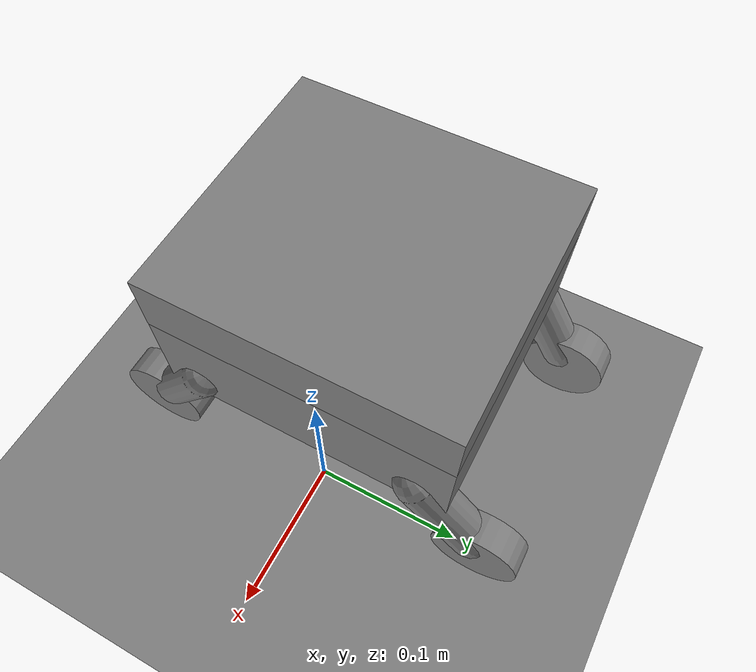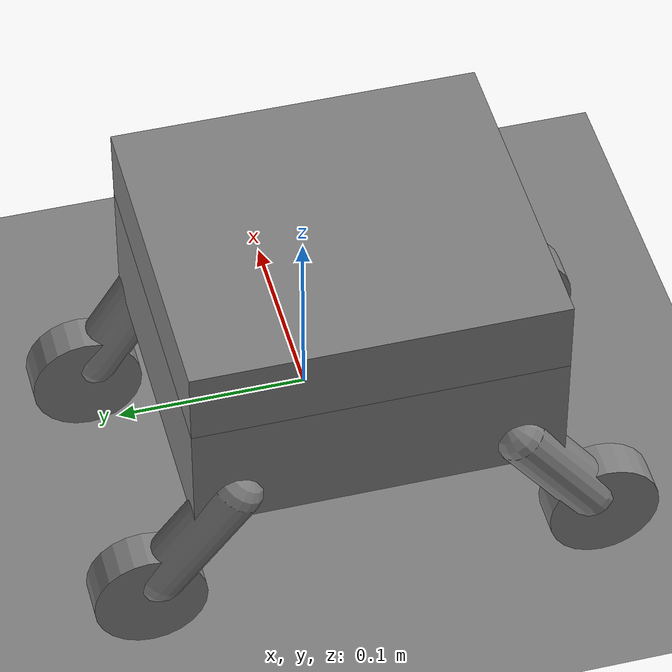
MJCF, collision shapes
<mujoco model="General Robotics Robot">

    <!-- COMPILER / SIMULATION                                  -->

    <compiler angle="degree"
              meshdir="Assets"
              inertiafromgeom="false"/>

    <option timestep="0.001"
            gravity="0 0 -9.81"
            integrator="implicitfast"
            iterations="50"/>

    <!-- VISUAL ASSETS                                          -->

    <asset>

        <mesh name="base_mesh" file="base_link.stl"/>

        <mesh name="leg_fl_mesh" file="Leg_FL.stl"/>
        <mesh name="leg_fr_mesh" file="Leg_FR.stl"/>
        <mesh name="leg_bl_mesh" file="Leg_BL.stl"/>
        <mesh name="leg_br_mesh" file="Leg_BR.stl"/>

        <mesh name="wheel_fl_mesh" file="Wheel_FL.stl"/>
        <mesh name="wheel_fr_mesh" file="Wheel_FR.stl"/>
        <mesh name="wheel_bl_mesh" file="Wheel_BL.stl"/>
        <mesh name="wheel_br_mesh" file="Wheel_BR.stl"/>

    </asset>

    <!-- WORLD                                                  -->

    <worldbody>

        <!-- FLOOR                                              -->

        <geom name="floor"
              type="plane"
              pos="0 0 0"
              size="2 2 0.1"
              friction="1 0.05 0.01"
              contype="1"
              conaffinity="1"
              group="0"/>

        <!-- ROBOT                                              -->

        <body name="base_link"
              pos="0 0 0.08373">

            <freejoint name="root_freejoint"/>

            <!-- BASE VISUAL                                        -->

            <geom name="base_visual"
                  type="mesh"
                  mesh="base_mesh"
                  contype="0"
                  conaffinity="0"
                  group="2"/>

            <!-- BASE INERTIA                                       -->

            <inertial
                pos="-0.070214 -0.000712 0.050450"
                mass="2.188379"
                fullinertia="
                    0.076070
                    0.085530
                    0.122000
                    0.000022967131
                    -0.000009709464
                    -0.000011921456"/>

            <!-- BASE COLLISION                                     -->
            <!-- group 3 = collision/debug geometry                 -->

            <geom name="base_collision_lower"
                  type="box"
                  pos="-0.070 0 0.03125"
                  size="0.085 0.093 0.03125"
                  friction="1 0.05 0.01"
                  contype="1"
                  conaffinity="1"
                  group="3"/>

            <geom name="base_collision_upper"
                  type="box"
                  pos="-0.070 0 0.08200"
                  size="0.085 0.093 0.01950"
                  friction="1 0.05 0.01"
                  contype="1"
                  conaffinity="1"
                  group="3"/>

            <!-- FRONT RIGHT LEG                                    -->

            <body name="Leg_FR"
                  pos="0.010 0.065 0.0225">

                <joint name="hip_FR"
                       type="hinge"
                       axis="1 0 0"
                       damping="2"
                       limited="true"
                       range="-45 75"/>

                <geom name="leg_FR_visual"
                      type="mesh"
                      mesh="leg_fr_mesh"
                      pos="-0.010 -0.065 -0.0225"
                      contype="0"
                      conaffinity="0"
                      group="2"/>

                <geom name="leg_FR_collision"
                      type="capsule"
                      fromto="
                          -0.0006 0.0061 -0.0087
                          -0.0044 0.0450 -0.0640"
                      size="0.014"
                      friction="1 0.05 0.01"
                      contype="1"
                      conaffinity="1"
                      group="3"/>

                <inertial
                    pos="0.039288 0.029282 -0.041676"
                    mass="0.082136"
                    fullinertia="
                        0.000136800
                        0.000116800
                        0.000075936346
                        -0.000007677130
                        0.000010997569
                        0.000057220861"/>

                <!-- FRONT RIGHT WHEEL                              -->

                <body name="Wheel_FR"
                      pos="-0.005 0.051075 -0.072731">

                    <joint name="wheel_FR"
                           type="hinge"
                           axis="1 0 0"
                           damping="0.1"/>

                    <geom name="wheel_FR_visual"
                          type="mesh"
                          mesh="wheel_fr_mesh"
                          pos="-0.005 -0.116075 0.050231"
                          contype="0"
                          conaffinity="0"
                          group="2"/>

                    <geom name="wheel_FR_collision"
                          type="cylinder"
                          pos="0 0 0"
                          euler="0 90 0"
                          size="0.0284985 0.010"
                          friction="1 0.05 0.01"
                          contype="1"
                          conaffinity="1"
                          group="3"/>

                    <inertial
                        pos="-0.001355 0 0"
                        mass="0.038316"
                        fullinertia="
                            0.000018581992
                            0.000011054022
                            0.000011053486
                            0
                            0
                            0.000000001523"/>

                </body>

            </body>

            <!-- FRONT LEFT LEG                                     -->

            <body name="Leg_FL"
                  pos="-0.150 0.065 0.0225">

                <joint name="hip_FL"
                       type="hinge"
                       axis="1 0 0"
                       damping="2"
                       limited="true"
                       range="-75 45"/>

                <geom name="leg_FL_visual"
                      type="mesh"
                      mesh="leg_fl_mesh"
                      pos="0.150 -0.065 -0.0225"
                      contype="0"
                      conaffinity="0"
                      group="2"/>

                <geom name="leg_FL_collision"
                      type="capsule"
                      fromto="
                          0.0006 0.0061 -0.0087
                          0.0044 0.0450 -0.0640"
                      size="0.014"
                      friction="1 0.05 0.01"
                      contype="1"
                      conaffinity="1"
                      group="3"/>

                <inertial
                    pos="-0.037573 0.035469 -0.050682"
                    mass="0.141223"
                    fullinertia="
                        0.000172400
                        0.000145600
                        0.000093954807
                        0.000005261590
                        -0.000007566613
                        0.000071755082"/>

                <!-- FRONT LEFT WHEEL                               -->

                <body name="Wheel_FL"
                      pos="0.005 0.051075 -0.072731">

                    <joint name="wheel_FL"
                           type="hinge"
                           axis="1 0 0"
                           damping="0.1"/>

                    <geom name="wheel_FL_visual"
                          type="mesh"
                          mesh="wheel_fl_mesh"
                          pos="0.145 -0.116075 0.050231"
                          contype="0"
                          conaffinity="0"
                          group="2"/>

                    <geom name="wheel_FL_collision"
                          type="cylinder"
                          pos="0 0 0"
                          euler="0 90 0"
                          size="0.0284985 0.010"
                          friction="1 0.05 0.01"
                          contype="1"
                          conaffinity="1"
                          group="3"/>

                    <inertial
                        pos="0.001355 0 0"
                        mass="0.038316"
                        fullinertia="
                            0.000018581992
                            0.000011054022
                            0.000011053486
                            0
                            0
                            0.000000001523"/>

                </body>

            </body>

            <!-- BACK RIGHT LEG                                     -->

            <body name="Leg_BR"
                  pos="0.010 -0.065 0.0225">

                <joint name="hip_BR"
                       type="hinge"
                       axis="1 0 0"
                       damping="2"
                       limited="true"
                       range="-45 75"/>

                <geom name="leg_BR_visual"
                      type="mesh"
                      mesh="leg_br_mesh"
                      pos="-0.010 0.065 -0.0225"
                      contype="0"
                      conaffinity="0"
                      group="2"/>

                <geom name="leg_BR_collision"
                      type="capsule"
                      fromto="
                          -0.0006 -0.0061 -0.0087
                          -0.0044 -0.0450 -0.0640"
                      size="0.014"
                      friction="1 0.05 0.01"
                      contype="1"
                      conaffinity="1"
                      group="3"/>

                <inertial
                    pos="0.039288 -0.029282 -0.041676"
                    mass="0.082135"
                    fullinertia="
                        0.000136800
                        0.000116800
                        0.000075935966
                        0.000007676943
                        0.000010997300
                        -0.000057220600"/>

                <!-- BACK RIGHT WHEEL                               -->

                <body name="Wheel_BR"
                      pos="-0.005 -0.051075 -0.072731">

                    <joint name="wheel_BR"
                           type="hinge"
                           axis="1 0 0"
                           damping="0.1"/>

                    <geom name="wheel_BR_visual"
                          type="mesh"
                          mesh="wheel_br_mesh"
                          pos="-0.005 0.116075 0.050231"
                          contype="0"
                          conaffinity="0"
                          group="2"/>

                    <geom name="wheel_BR_collision"
                          type="cylinder"
                          pos="0 0 0"
                          euler="0 90 0"
                          size="0.0284985 0.010"
                          friction="1 0.05 0.01"
                          contype="1"
                          conaffinity="1"
                          group="3"/>

                    <inertial
                        pos="-0.001355 0 0"
                        mass="0.038316"
                        fullinertia="
                            0.000018581992
                            0.000011054022
                            0.000011053486
                            0
                            0
                            -0.000000001523"/>

                </body>

            </body>

            <!-- BACK LEFT LEG                                      -->

            <body name="Leg_BL"
                  pos="-0.150 -0.065 0.0225">

                <joint name="hip_BL"
                       type="hinge"
                       axis="1 0 0"
                       damping="2"
                       limited="true"
                       range="-75 45"/>

                <geom name="leg_BL_visual"
                      type="mesh"
                      mesh="leg_bl_mesh"
                      pos="0.150 0.065 -0.0225"
                      contype="0"
                      conaffinity="0"
                      group="2"/>

                <geom name="leg_BL_collision"
                      type="capsule"
                      fromto="
                          0.0006 -0.0061 -0.0087
                          0.0044 -0.0450 -0.0640"
                      size="0.014"
                      friction="1 0.05 0.01"
                      contype="1"
                      conaffinity="1"
                      group="3"/>

                <inertial
                    pos="-0.039288 -0.029282 -0.041676"
                    mass="0.082135"
                    fullinertia="
                        0.000136800
                        0.000116800
                        0.000075935772
                        -0.000007677012
                        -0.000010997397
                        -0.000057220295"/>

                <!-- BACK LEFT WHEEL                                -->

                <body name="Wheel_BL"
                      pos="0.005 -0.051075 -0.072731">

                    <joint name="wheel_BL"
                           type="hinge"
                           axis="1 0 0"
                           damping="0.1"/>

                    <geom name="wheel_BL_visual"
                          type="mesh"
                          mesh="wheel_bl_mesh"
                          pos="0.145 0.116075 0.050231"
                          contype="0"
                          conaffinity="0"
                          group="2"/>

                    <geom name="wheel_BL_collision"
                          type="cylinder"
                          pos="0 0 0"
                          euler="0 90 0"
                          size="0.0284985 0.010"
                          friction="1 0.05 0.01"
                          contype="1"
                          conaffinity="1"
                          group="3"/>

                    <inertial
                        pos="0.001355 0 0"
                        mass="0.038316"
                        fullinertia="
                            0.000018581992
                            0.000011054022
                            0.000011053486
                            0
                            0
                            -0.000000001523"/>

                </body>

            </body>

        </body>

    </worldbody>

    <!-- INTERNAL CONTACT EXCLUSIONS                            -->

    <contact>

        <exclude body1="base_link" body2="Leg_FR"/>
        <exclude body1="base_link" body2="Leg_FL"/>
        <exclude body1="base_link" body2="Leg_BR"/>
        <exclude body1="base_link" body2="Leg_BL"/>

        <exclude body1="Leg_FR" body2="Wheel_FR"/>
        <exclude body1="Leg_FL" body2="Wheel_FL"/>
        <exclude body1="Leg_BR" body2="Wheel_BR"/>
        <exclude body1="Leg_BL" body2="Wheel_BL"/>

    </contact>

    <!-- ACTUATORS                                              -->

    <actuator>

        <!-- HIP POSITION CONTROL                               -->

        <position name="hip_motor_FR"
                  joint="hip_FR"
                  kp="10"
                  ctrlrange="-0.785 1.309"/>

        <position name="hip_motor_FL"
                  joint="hip_FL"
                  kp="10"
                  ctrlrange="-1.309 0.785"/>

        <position name="hip_motor_BR"
                  joint="hip_BR"
                  kp="10"
                  ctrlrange="-0.785 1.309"/>

        <position name="hip_motor_BL"
                  joint="hip_BL"
                  kp="10"
                  ctrlrange="-1.309 0.785"/>

        <!-- WHEEL VELOCITY CONTROL                             -->
        <!-- Control values are target angular velocities in    -->
        <!-- rad/s.                                              -->
        <!-- +/-10 rad/s corresponds to roughly +/-95 RPM.      -->
        <!-- We will begin testing MUCH slower than that.        -->

        <velocity name="wheel_motor_FR"
                  joint="wheel_FR"
                  kv="0.15"
                  ctrlrange="-10 10"/>

        <velocity name="wheel_motor_FL"
                  joint="wheel_FL"
                  kv="0.15"
                  ctrlrange="-10 10"/>

        <velocity name="wheel_motor_BR"
                  joint="wheel_BR"
                  kv="0.15"
                  ctrlrange="-10 10"/>

        <velocity name="wheel_motor_BL"
                  joint="wheel_BL"
                  kv="0.15"
                  ctrlrange="-10 10"/>

    </actuator>

</mujoco>
